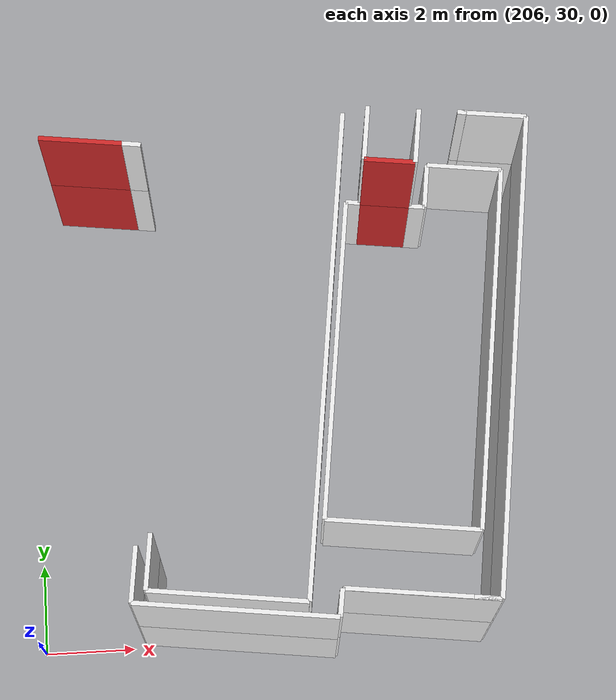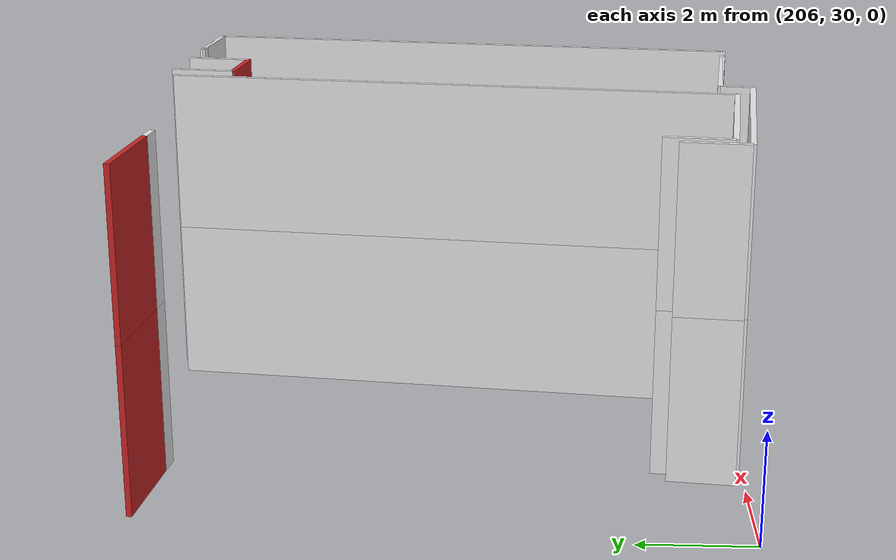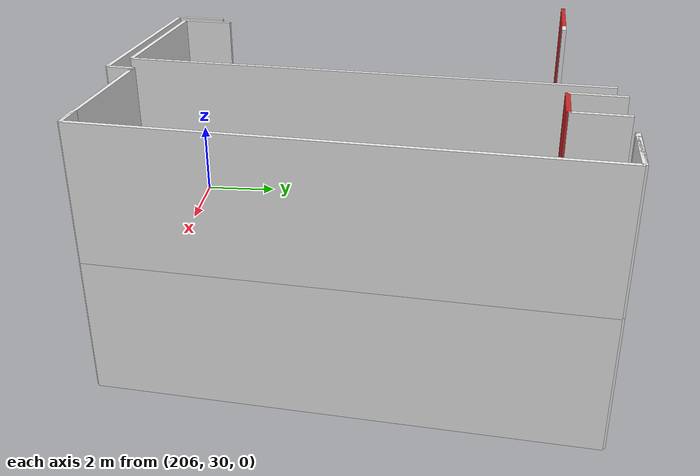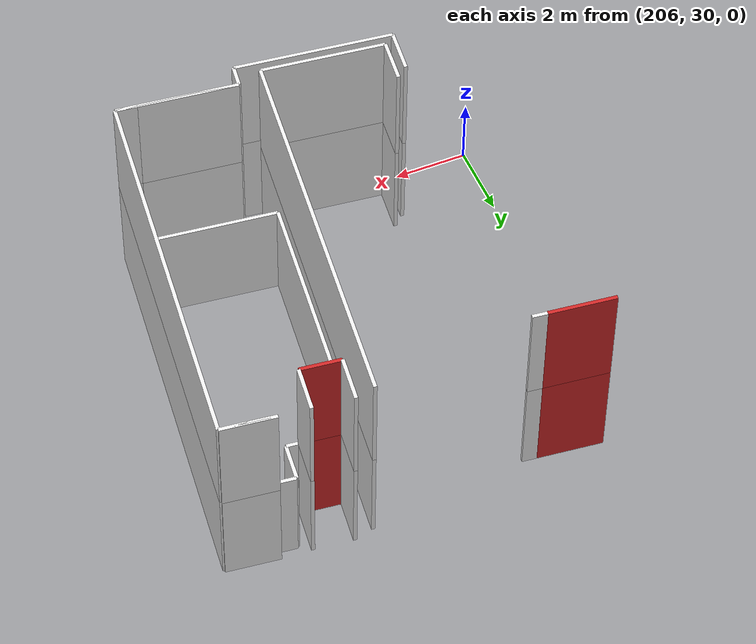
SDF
<sdf version="1.6">
 <world name="default">
  <model name="wall_207.6_40.1_1.5">
   <static>true</static>
   <pose>207.55999999999767 40.13500000000931 1.5 0 0 -0.11743469003206944</pose>
   <link name="link">
    <visual name="visual">
     <geometry><box><size>1.7923448329714338 0.1 3</size></box></geometry>
     <material>
      <script><uri>file://media/materials/scripts/gazebo.material</uri><name>Gazebo/Red</name></script>
     </material>
    </visual>
    <collision name="collision"><geometry><box><size>1.7923448329714338 0.1 3</size></box></geometry></collision>
   </link>
  </model>
  <model name="wall_214.1_39.3_1.5">
   <static>true</static>
   <pose>214.1350000000093 39.34499999997206 1.5 0 0 -0.11870533746682131</pose>
   <link name="link">
    <visual name="visual">
     <geometry><box><size>1.097724920014552 0.1 3</size></box></geometry>
     <material>
      <script><uri>file://media/materials/scripts/gazebo.material</uri><name>Gazebo/Red</name></script>
     </material>
    </visual>
    <collision name="collision"><geometry><box><size>1.097724920014552 0.1 3</size></box></geometry></collision>
   </link>
  </model>
  <model name="wall_207.6_40.1_4.5">
   <static>true</static>
   <pose>207.55999999999767 40.13500000000931 4.5 0 0 -0.11743469003206944</pose>
   <link name="link">
    <visual name="visual">
     <geometry><box><size>1.7923448329714338 0.1 3</size></box></geometry>
     <material>
      <script><uri>file://media/materials/scripts/gazebo.material</uri><name>Gazebo/Red</name></script>
     </material>
    </visual>
    <collision name="collision"><geometry><box><size>1.7923448329714338 0.1 3</size></box></geometry></collision>
   </link>
  </model>
  <model name="wall_214.1_39.3_4.5">
   <static>true</static>
   <pose>214.1350000000093 39.34499999997206 4.5 0 0 -0.11870533746682131</pose>
   <link name="link">
    <visual name="visual">
     <geometry><box><size>1.097724920014552 0.1 3</size></box></geometry>
     <material>
      <script><uri>file://media/materials/scripts/gazebo.material</uri><name>Gazebo/Red</name></script>
     </material>
    </visual>
    <collision name="collision"><geometry><box><size>1.097724920014552 0.1 3</size></box></geometry></collision>
   </link>
  </model>
  <model name="wall_214.8_39.9_1.5">
   <static>true</static>
   <pose>214.75500000000466 39.875 1.5 0 0 -1.6961854471129454</pose>
   <link name="link">
    <visual name="visual">
     <geometry><box><size>1.199416525224772 0.1 3</size></box></geometry>
     <material>
      <script><uri>file://media/materials/scripts/gazebo.material</uri><name>Gazebo/White</name></script>
     </material>
    </visual>
    <collision name="collision"><geometry><box><size>1.199416525224772 0.1 3</size></box></geometry></collision>
   </link>
  </model>
  <model name="wall_213.7_40.0_1.5">
   <static>true</static>
   <pose>213.66500000000815 40.00500000012107 1.5 0 0 1.4454072064764434</pose>
   <link name="link">
    <visual name="visual">
     <geometry><box><size>1.199416524755487 0.1 3</size></box></geometry>
     <material>
      <script><uri>file://media/materials/scripts/gazebo.material</uri><name>Gazebo/White</name></script>
     </material>
    </visual>
    <collision name="collision"><geometry><box><size>1.199416524755487 0.1 3</size></box></geometry></collision>
   </link>
  </model>
  <model name="wall_213.4_39.4_1.5">
   <static>true</static>
   <pose>213.43000000002212 39.43000000016764 1.5 0 0 -0.12435499465869924</pose>
   <link name="link">
    <visual name="visual">
     <geometry><box><size>0.3224903099434936 0.1 3</size></box></geometry>
     <material>
      <script><uri>file://media/materials/scripts/gazebo.material</uri><name>Gazebo/White</name></script>
     </material>
    </visual>
    <collision name="collision"><geometry><box><size>0.3224903099434936 0.1 3</size></box></geometry></collision>
   </link>
  </model>
  <model name="wall_214.9_39.3_1.5">
   <static>true</static>
   <pose>214.85500000001048 39.26000000000931 1.5 0 0 -0.11379200592420832</pose>
   <link name="link">
    <visual name="visual">
     <geometry><box><size>0.3522782990622252 0.1 3</size></box></geometry>
     <material>
      <script><uri>file://media/materials/scripts/gazebo.material</uri><name>Gazebo/White</name></script>
     </material>
    </visual>
    <collision name="collision"><geometry><box><size>0.3522782990622252 0.1 3</size></box></geometry></collision>
   </link>
  </model>
  <model name="wall_215.1_39.7_1.5">
   <static>true</static>
   <pose>215.0900000000256 39.735000000102445 1.5 0 0 1.4501726581902115</pose>
   <link name="link">
    <visual name="visual">
     <geometry><box><size>0.997246208074735 0.1 3</size></box></geometry>
     <material>
      <script><uri>file://media/materials/scripts/gazebo.material</uri><name>Gazebo/White</name></script>
     </material>
    </visual>
    <collision name="collision"><geometry><box><size>0.997246208074735 0.1 3</size></box></geometry></collision>
   </link>
  </model>
  <model name="wall_216.0_40.1_1.5">
   <static>true</static>
   <pose>215.98000000001048 40.12999999988824 1.5 0 0 -0.11990398547745822</pose>
   <link name="link">
    <visual name="visual">
     <geometry><box><size>1.672004784679002 0.1 3</size></box></geometry>
     <material>
      <script><uri>file://media/materials/scripts/gazebo.material</uri><name>Gazebo/White</name></script>
     </material>
    </visual>
    <collision name="collision"><geometry><box><size>1.672004784679002 0.1 3</size></box></geometry></collision>
   </link>
  </model>
  <model name="wall_216.3_35.9_1.5">
   <static>true</static>
   <pose>216.30999999999767 35.924999999813735 1.5 0 0 -1.6920019616285422</pose>
   <link name="link">
    <visual name="visual">
     <geometry><box><size>8.270677118554945 0.1 3</size></box></geometry>
     <material>
      <script><uri>file://media/materials/scripts/gazebo.material</uri><name>Gazebo/White</name></script>
     </material>
    </visual>
    <collision name="collision"><geometry><box><size>8.270677118554945 0.1 3</size></box></geometry></collision>
   </link>
  </model>
  <model name="wall_214.1_32.0_1.5">
   <static>true</static>
   <pose>214.10000000000582 32.02499999990687 1.5 0 0 3.0222790278848586</pose>
   <link name="link">
    <visual name="visual">
     <geometry><box><size>3.4444883509761954 0.1 3</size></box></geometry>
     <material>
      <script><uri>file://media/materials/scripts/gazebo.material</uri><name>Gazebo/White</name></script>
     </material>
    </visual>
    <collision name="collision"><geometry><box><size>3.4444883509761954 0.1 3</size></box></geometry></collision>
   </link>
  </model>
  <model name="wall_212.8_35.8_1.5">
   <static>true</static>
   <pose>212.8300000000163 35.84000000008382 1.5 0 0 1.4495108996906245</pose>
   <link name="link">
    <visual name="visual">
     <geometry><box><size>7.2734311025104805 0.1 3</size></box></geometry>
     <material>
      <script><uri>file://media/materials/scripts/gazebo.material</uri><name>Gazebo/White</name></script>
     </material>
    </visual>
    <collision name="collision"><geometry><box><size>7.2734311025104805 0.1 3</size></box></geometry></collision>
   </link>
  </model>
  <model name="wall_208.6_40.0_1.5">
   <static>true</static>
   <pose>208.64999999999418 40.00499999988824 1.5 0 0 -0.1243549940990102</pose>
   <link name="link">
    <visual name="visual">
     <geometry><box><size>0.4031128873571693 0.1 3</size></box></geometry>
     <material>
      <script><uri>file://media/materials/scripts/gazebo.material</uri><name>Gazebo/White</name></script>
     </material>
    </visual>
    <collision name="collision"><geometry><box><size>0.4031128873571693 0.1 3</size></box></geometry></collision>
   </link>
  </model>
  <model name="wall_212.6_35.2_1.5">
   <static>true</static>
   <pose>212.55499999999302 35.22500000009313 1.5 0 0 -1.69127764662072</pose>
   <link name="link">
    <visual name="visual">
     <geometry><box><size>10.566598317563543 0.1 3</size></box></geometry>
     <material>
      <script><uri>file://media/materials/scripts/gazebo.material</uri><name>Gazebo/White</name></script>
     </material>
    </visual>
    <collision name="collision"><geometry><box><size>10.566598317563543 0.1 3</size></box></geometry></collision>
   </link>
  </model>
  <model name="wall_210.3_30.2_1.5">
   <static>true</static>
   <pose>210.25500000000466 30.179999999934807 1.5 0 0 3.0220453143358026</pose>
   <link name="link">
    <visual name="visual">
     <geometry><box><size>3.353937983870062 0.1 3</size></box></geometry>
     <material>
      <script><uri>file://media/materials/scripts/gazebo.material</uri><name>Gazebo/White</name></script>
     </material>
    </visual>
    <collision name="collision"><geometry><box><size>3.353937983870062 0.1 3</size></box></geometry></collision>
   </link>
  </model>
  <model name="wall_208.7_31.0_1.5">
   <static>true</static>
   <pose>208.6600000000035 30.9749999998603 1.5 0 0 1.4536875822592505</pose>
   <link name="link">
    <visual name="visual">
     <geometry><box><size>1.1982069937429929 0.1 3</size></box></geometry>
     <material>
      <script><uri>file://media/materials/scripts/gazebo.material</uri><name>Gazebo/White</name></script>
     </material>
    </visual>
    <collision name="collision"><geometry><box><size>1.1982069937429929 0.1 3</size></box></geometry></collision>
   </link>
  </model>
  <model name="wall_208.4_30.7_1.5">
   <static>true</static>
   <pose>208.35000000000582 30.729999999981374 1.5 0 0 -1.6888883552065703</pose>
   <link name="link">
    <visual name="visual">
     <geometry><box><size>1.1882760618998762 0.1 3</size></box></geometry>
     <material>
      <script><uri>file://media/materials/scripts/gazebo.material</uri><name>Gazebo/White</name></script>
     </material>
    </visual>
    <collision name="collision"><geometry><box><size>1.1882760618998762 0.1 3</size></box></geometry></collision>
   </link>
  </model>
  <model name="wall_210.4_29.9_1.5">
   <static>true</static>
   <pose>210.40500000002794 29.885000000009313 1.5 0 0 -0.11942892607450468</pose>
   <link name="link">
    <visual name="visual">
     <geometry><box><size>4.280490626113669 0.1 3</size></box></geometry>
     <material>
      <script><uri>file://media/materials/scripts/gazebo.material</uri><name>Gazebo/White</name></script>
     </material>
    </visual>
    <collision name="collision"><geometry><box><size>4.280490626113669 0.1 3</size></box></geometry></collision>
   </link>
  </model>
  <model name="wall_212.6_29.9_1.5">
   <static>true</static>
   <pose>212.57000000000698 29.925000000046566 1.5 0 0 1.4360250424583745</pose>
   <link name="link">
    <visual name="visual">
     <geometry><box><size>0.5953990261723151 0.1 3</size></box></geometry>
     <material>
      <script><uri>file://media/materials/scripts/gazebo.material</uri><name>Gazebo/White</name></script>
     </material>
    </visual>
    <collision name="collision"><geometry><box><size>0.5953990261723151 0.1 3</size></box></geometry></collision>
   </link>
  </model>
  <model name="wall_213.9_30.1_1.5">
   <static>true</static>
   <pose>213.94500000000698 30.06000000005588 1.5 0 0 -0.11928123745531741</pose>
   <link name="link">
    <visual name="visual">
     <geometry><box><size>2.689107658762388 0.1 3</size></box></geometry>
     <material>
      <script><uri>file://media/materials/scripts/gazebo.material</uri><name>Gazebo/White</name></script>
     </material>
    </visual>
    <collision name="collision"><geometry><box><size>2.689107658762388 0.1 3</size></box></geometry></collision>
   </link>
  </model>
  <model name="wall_215.6_29.9_1.5">
   <static>true</static>
   <pose>215.57000000000698 29.864999999990687 1.5 0 0 -0.12010873529062689</pose>
   <link name="link">
    <visual name="visual">
     <geometry><box><size>0.5842088666974472 0.1 3</size></box></geometry>
     <material>
      <script><uri>file://media/materials/scripts/gazebo.material</uri><name>Gazebo/White</name></script>
     </material>
    </visual>
    <collision name="collision"><geometry><box><size>0.5842088666974472 0.1 3</size></box></geometry></collision>
   </link>
  </model>
  <model name="wall_216.5_35.0_1.5">
   <static>true</static>
   <pose>216.48499999998603 35.01000000000931 1.5 0 0 1.4507203980109182</pose>
   <link name="link">
    <visual name="visual">
     <geometry><box><size>10.43513775650798 0.1 3</size></box></geometry>
     <material>
      <script><uri>file://media/materials/scripts/gazebo.material</uri><name>Gazebo/White</name></script>
     </material>
    </visual>
    <collision name="collision"><geometry><box><size>10.43513775650798 0.1 3</size></box></geometry></collision>
   </link>
  </model>
  <model name="wall_216.5_40.3_1.5">
   <static>true</static>
   <pose>216.47500000000582 40.264999999897555 1.5 0 0 3.024027079520843</pose>
   <link name="link">
    <visual name="visual">
     <geometry><box><size>1.2788275880162752 0.1 3</size></box></geometry>
     <material>
      <script><uri>file://media/materials/scripts/gazebo.material</uri><name>Gazebo/White</name></script>
     </material>
    </visual>
    <collision name="collision"><geometry><box><size>1.2788275880162752 0.1 3</size></box></geometry></collision>
   </link>
  </model>
  <model name="wall_215.7_40.4_1.5">
   <static>true</static>
   <pose>215.74500000002445 40.35499999998137 1.5 0 0 2.9849907752705747</pose>
   <link name="link">
    <visual name="visual">
     <geometry><box><size>0.19235384065968367 0.1 3</size></box></geometry>
     <material>
      <script><uri>file://media/materials/scripts/gazebo.material</uri><name>Gazebo/White</name></script>
     </material>
    </visual>
    <collision name="collision"><geometry><box><size>0.19235384065968367 0.1 3</size></box></geometry></collision>
   </link>
  </model>
  <model name="wall_216.4_40.3_1.5">
   <static>true</static>
   <pose>216.38000000000466 40.28000000002794 1.5 0 0 -0.12266865562065685</pose>
   <link name="link">
    <visual name="visual">
     <geometry><box><size>1.4710540438582027 0.1 3</size></box></geometry>
     <material>
      <script><uri>file://media/materials/scripts/gazebo.material</uri><name>Gazebo/White</name></script>
     </material>
    </visual>
    <collision name="collision"><geometry><box><size>1.4710540438582027 0.1 3</size></box></geometry></collision>
   </link>
  </model>
  <model name="wall_214.2_30.0_1.5">
   <static>true</static>
   <pose>214.23499999998603 30.0250000001397 1.5 0 0 3.0221637275319058</pose>
   <link name="link">
    <visual name="visual">
     <geometry><box><size>3.2733163611392193 0.1 3</size></box></geometry>
     <material>
      <script><uri>file://media/materials/scripts/gazebo.material</uri><name>Gazebo/White</name></script>
     </material>
    </visual>
    <collision name="collision"><geometry><box><size>3.2733163611392193 0.1 3</size></box></geometry></collision>
   </link>
  </model>
  <model name="wall_214.8_39.9_4.5">
   <static>true</static>
   <pose>214.75500000000466 39.875 4.5 0 0 -1.6961854471129454</pose>
   <link name="link">
    <visual name="visual">
     <geometry><box><size>1.199416525224772 0.1 3</size></box></geometry>
     <material>
      <script><uri>file://media/materials/scripts/gazebo.material</uri><name>Gazebo/White</name></script>
     </material>
    </visual>
    <collision name="collision"><geometry><box><size>1.199416525224772 0.1 3</size></box></geometry></collision>
   </link>
  </model>
  <model name="wall_213.7_40.0_4.5">
   <static>true</static>
   <pose>213.66500000000815 40.00500000012107 4.5 0 0 1.4454072064764434</pose>
   <link name="link">
    <visual name="visual">
     <geometry><box><size>1.199416524755487 0.1 3</size></box></geometry>
     <material>
      <script><uri>file://media/materials/scripts/gazebo.material</uri><name>Gazebo/White</name></script>
     </material>
    </visual>
    <collision name="collision"><geometry><box><size>1.199416524755487 0.1 3</size></box></geometry></collision>
   </link>
  </model>
  <model name="wall_208.6_40.0_4.5">
   <static>true</static>
   <pose>208.64999999999418 40.00499999988824 4.5 0 0 -0.1243549940990102</pose>
   <link name="link">
    <visual name="visual">
     <geometry><box><size>0.4031128873571693 0.1 3</size></box></geometry>
     <material>
      <script><uri>file://media/materials/scripts/gazebo.material</uri><name>Gazebo/White</name></script>
     </material>
    </visual>
    <collision name="collision"><geometry><box><size>0.4031128873571693 0.1 3</size></box></geometry></collision>
   </link>
  </model>
  <model name="wall_212.6_35.2_4.5">
   <static>true</static>
   <pose>212.55499999999302 35.22500000009313 4.5 0 0 -1.69127764662072</pose>
   <link name="link">
    <visual name="visual">
     <geometry><box><size>10.566598317563543 0.1 3</size></box></geometry>
     <material>
      <script><uri>file://media/materials/scripts/gazebo.material</uri><name>Gazebo/White</name></script>
     </material>
    </visual>
    <collision name="collision"><geometry><box><size>10.566598317563543 0.1 3</size></box></geometry></collision>
   </link>
  </model>
  <model name="wall_210.3_30.2_4.5">
   <static>true</static>
   <pose>210.25500000000466 30.179999999934807 4.5 0 0 3.0220453143358026</pose>
   <link name="link">
    <visual name="visual">
     <geometry><box><size>3.353937983870062 0.1 3</size></box></geometry>
     <material>
      <script><uri>file://media/materials/scripts/gazebo.material</uri><name>Gazebo/White</name></script>
     </material>
    </visual>
    <collision name="collision"><geometry><box><size>3.353937983870062 0.1 3</size></box></geometry></collision>
   </link>
  </model>
  <model name="wall_208.7_31.0_4.5">
   <static>true</static>
   <pose>208.6600000000035 30.9749999998603 4.5 0 0 1.4536875822592505</pose>
   <link name="link">
    <visual name="visual">
     <geometry><box><size>1.1982069937429929 0.1 3</size></box></geometry>
     <material>
      <script><uri>file://media/materials/scripts/gazebo.material</uri><name>Gazebo/White</name></script>
     </material>
    </visual>
    <collision name="collision"><geometry><box><size>1.1982069937429929 0.1 3</size></box></geometry></collision>
   </link>
  </model>
  <model name="wall_208.4_30.7_4.5">
   <static>true</static>
   <pose>208.35000000000582 30.729999999981374 4.5 0 0 -1.6888883552065703</pose>
   <link name="link">
    <visual name="visual">
     <geometry><box><size>1.1882760618998762 0.1 3</size></box></geometry>
     <material>
      <script><uri>file://media/materials/scripts/gazebo.material</uri><name>Gazebo/White</name></script>
     </material>
    </visual>
    <collision name="collision"><geometry><box><size>1.1882760618998762 0.1 3</size></box></geometry></collision>
   </link>
  </model>
  <model name="wall_210.4_29.9_4.5">
   <static>true</static>
   <pose>210.40500000002794 29.885000000009313 4.5 0 0 -0.11942892607450468</pose>
   <link name="link">
    <visual name="visual">
     <geometry><box><size>4.280490626113669 0.1 3</size></box></geometry>
     <material>
      <script><uri>file://media/materials/scripts/gazebo.material</uri><name>Gazebo/White</name></script>
     </material>
    </visual>
    <collision name="collision"><geometry><box><size>4.280490626113669 0.1 3</size></box></geometry></collision>
   </link>
  </model>
  <model name="wall_212.6_29.9_4.5">
   <static>true</static>
   <pose>212.57000000000698 29.925000000046566 4.5 0 0 1.4360250424583745</pose>
   <link name="link">
    <visual name="visual">
     <geometry><box><size>0.5953990261723151 0.1 3</size></box></geometry>
     <material>
      <script><uri>file://media/materials/scripts/gazebo.material</uri><name>Gazebo/White</name></script>
     </material>
    </visual>
    <collision name="collision"><geometry><box><size>0.5953990261723151 0.1 3</size></box></geometry></collision>
   </link>
  </model>
  <model name="wall_213.9_30.1_4.5">
   <static>true</static>
   <pose>213.94500000000698 30.06000000005588 4.5 0 0 -0.11928123745531741</pose>
   <link name="link">
    <visual name="visual">
     <geometry><box><size>2.689107658762388 0.1 3</size></box></geometry>
     <material>
      <script><uri>file://media/materials/scripts/gazebo.material</uri><name>Gazebo/White</name></script>
     </material>
    </visual>
    <collision name="collision"><geometry><box><size>2.689107658762388 0.1 3</size></box></geometry></collision>
   </link>
  </model>
  <model name="wall_215.6_29.9_4.5">
   <static>true</static>
   <pose>215.57000000000698 29.864999999990687 4.5 0 0 -0.12010873529062689</pose>
   <link name="link">
    <visual name="visual">
     <geometry><box><size>0.5842088666974472 0.1 3</size></box></geometry>
     <material>
      <script><uri>file://media/materials/scripts/gazebo.material</uri><name>Gazebo/White</name></script>
     </material>
    </visual>
    <collision name="collision"><geometry><box><size>0.5842088666974472 0.1 3</size></box></geometry></collision>
   </link>
  </model>
  <model name="wall_216.5_35.0_4.5">
   <static>true</static>
   <pose>216.48499999998603 35.01000000000931 4.5 0 0 1.4507203980109182</pose>
   <link name="link">
    <visual name="visual">
     <geometry><box><size>10.43513775650798 0.1 3</size></box></geometry>
     <material>
      <script><uri>file://media/materials/scripts/gazebo.material</uri><name>Gazebo/White</name></script>
     </material>
    </visual>
    <collision name="collision"><geometry><box><size>10.43513775650798 0.1 3</size></box></geometry></collision>
   </link>
  </model>
  <model name="wall_216.5_40.3_4.5">
   <static>true</static>
   <pose>216.47500000000582 40.264999999897555 4.5 0 0 3.024027079520843</pose>
   <link name="link">
    <visual name="visual">
     <geometry><box><size>1.2788275880162752 0.1 3</size></box></geometry>
     <material>
      <script><uri>file://media/materials/scripts/gazebo.material</uri><name>Gazebo/White</name></script>
     </material>
    </visual>
    <collision name="collision"><geometry><box><size>1.2788275880162752 0.1 3</size></box></geometry></collision>
   </link>
  </model>
  <model name="wall_215.7_40.4_4.5">
   <static>true</static>
   <pose>215.74500000002445 40.35499999998137 4.5 0 0 2.9849907752705747</pose>
   <link name="link">
    <visual name="visual">
     <geometry><box><size>0.19235384065968367 0.1 3</size></box></geometry>
     <material>
      <script><uri>file://media/materials/scripts/gazebo.material</uri><name>Gazebo/White</name></script>
     </material>
    </visual>
    <collision name="collision"><geometry><box><size>0.19235384065968367 0.1 3</size></box></geometry></collision>
   </link>
  </model>
  <model name="wall_216.4_40.3_4.5">
   <static>true</static>
   <pose>216.38000000000466 40.28000000002794 4.5 0 0 -0.12266865562065685</pose>
   <link name="link">
    <visual name="visual">
     <geometry><box><size>1.4710540438582027 0.1 3</size></box></geometry>
     <material>
      <script><uri>file://media/materials/scripts/gazebo.material</uri><name>Gazebo/White</name></script>
     </material>
    </visual>
    <collision name="collision"><geometry><box><size>1.4710540438582027 0.1 3</size></box></geometry></collision>
   </link>
  </model>
  <model name="wall_214.2_30.0_4.5">
   <static>true</static>
   <pose>214.23499999998603 30.0250000001397 4.5 0 0 3.0221637275319058</pose>
   <link name="link">
    <visual name="visual">
     <geometry><box><size>3.2733163611392193 0.1 3</size></box></geometry>
     <material>
      <script><uri>file://media/materials/scripts/gazebo.material</uri><name>Gazebo/White</name></script>
     </material>
    </visual>
    <collision name="collision"><geometry><box><size>3.2733163611392193 0.1 3</size></box></geometry></collision>
   </link>
  </model>
 </world>
</sdf>
